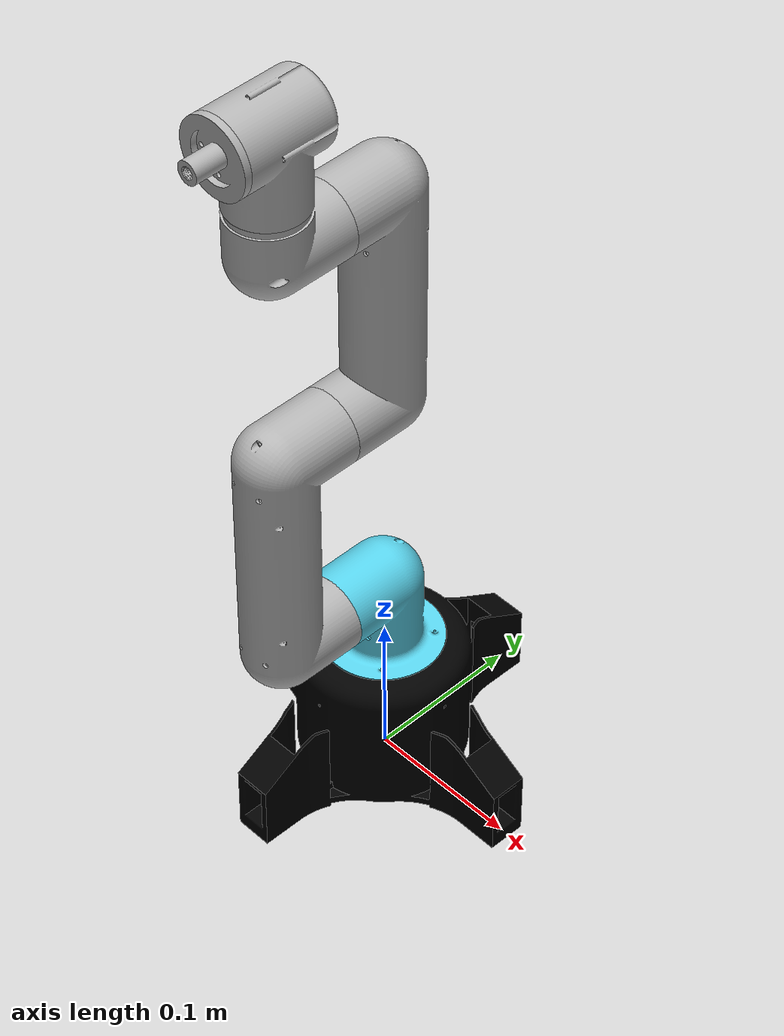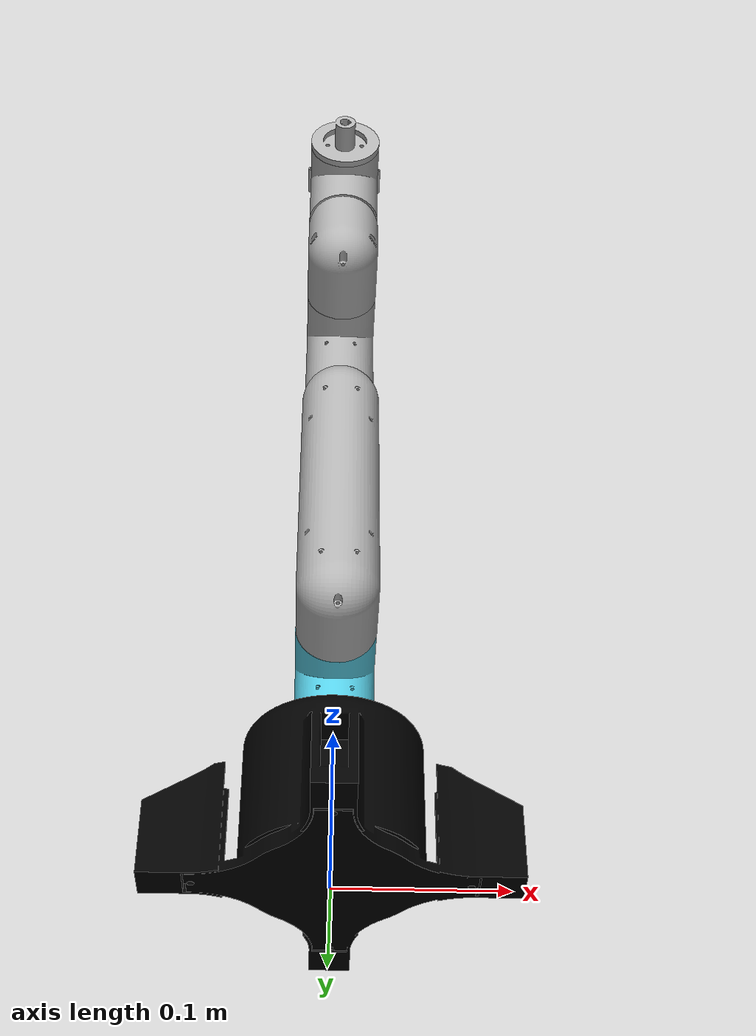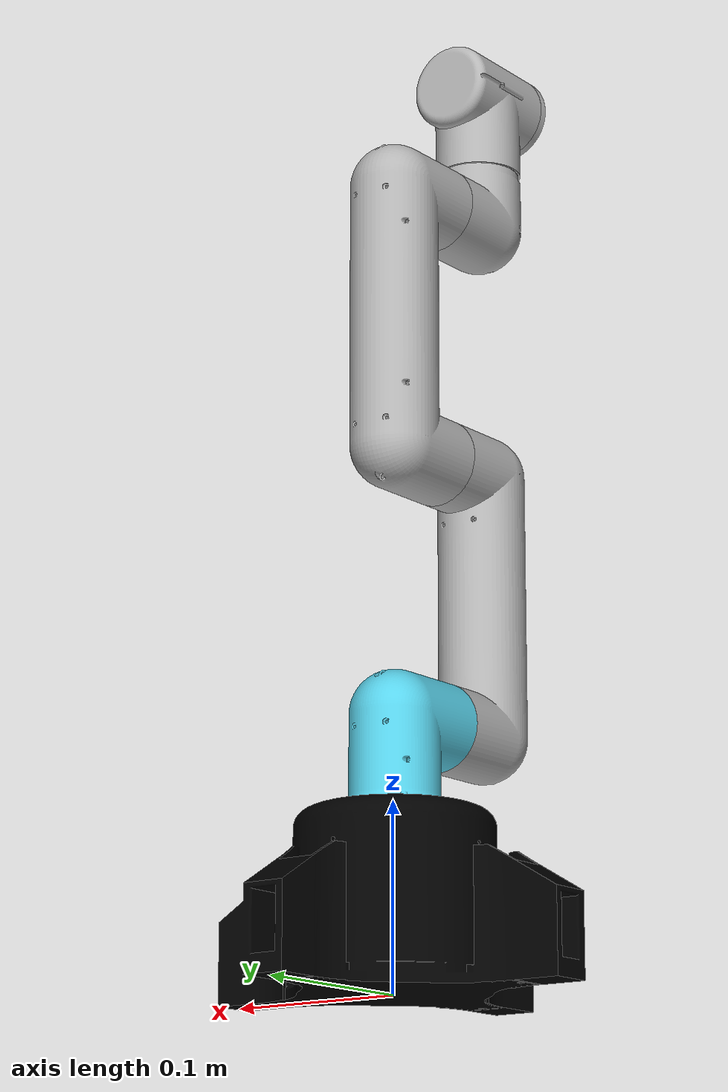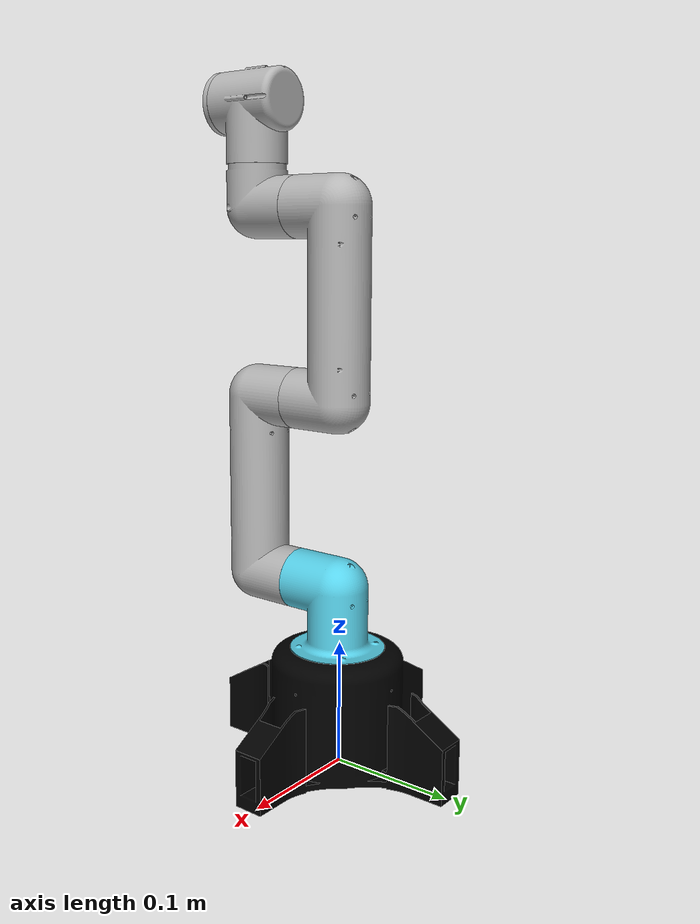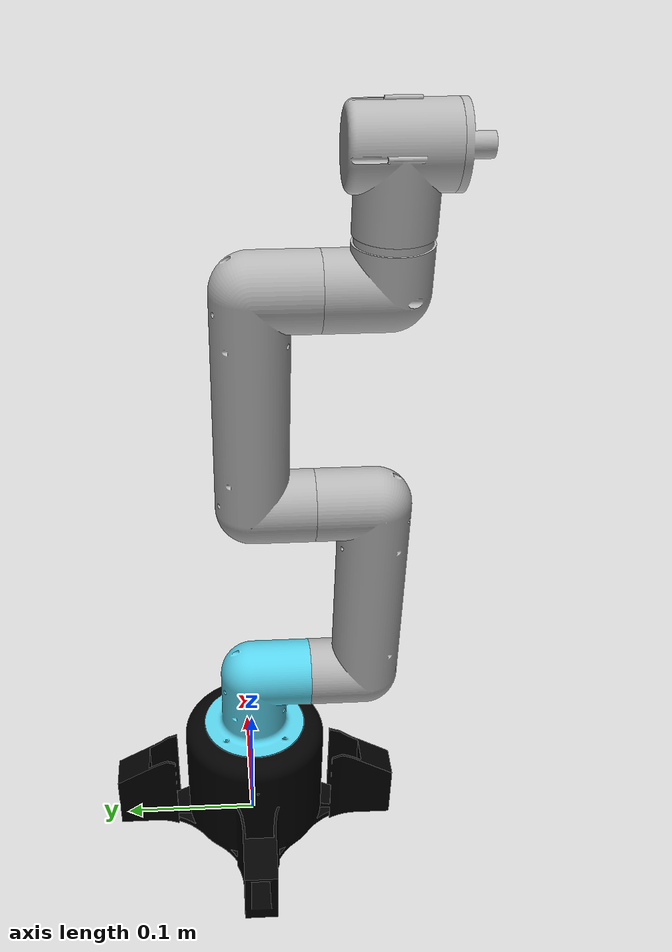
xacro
<?xml version="1.0"?>
<robot xmlns:xacro="http://www.ros.org/wiki/xacro" name="meskobot">
    <xacro:arg name="initial_positions_file" default="initial_positions.yaml" />

    <!-- Import meskobot urdf file -->
    <xacro:include filename="$(find mesko_hardware)/urdf/meskobot.xacro" />

    <!-- Import control_xacro -->
    <xacro:include filename="meskobot.ros2_control.xacro" />

    <xacro:meskobot_ros2_control name="FakeSystem" initial_positions_file="$(arg initial_positions_file)"/>

</robot>

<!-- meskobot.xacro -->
<robot name="meskobot" xmlns:xacro="http://www.ros.org/wiki/xacro">

<xacro:include filename="$(find mesko_hardware)/urdf/materials.xacro" />
<xacro:include filename="$(find mesko_hardware)/urdf/ros2_control.xacro"/>
<link name="world" />
<link name="base_link">
  <inertial>
    <origin xyz="-0.0003745397791516883 -0.0019631062043038395 0.03747857880265421" rpy="0 0 0"/>
    <mass value="3.1845826352803597"/>
    <inertia ixx="0.008692" iyy="0.008661" izz="0.011323" ixy="-1e-06" iyz="1e-06" ixz="-3.5e-05"/>
  </inertial>
  <visual>
    <origin xyz="0 0 0" rpy="0 0 0"/>
    <geometry>
      <mesh filename="file://$(find meskobot_description)/meshes/base_link.stl" scale="0.001 0.001 0.001"/>
    </geometry>
    <material name="black"/>
  </visual>
  <collision>
    <origin xyz="0 0 0" rpy="0 0 0"/>
    <geometry>
      <mesh filename="file://$(find meskobot_description)/meshes/base_link.stl" scale="0.001 0.001 0.001"/>
    </geometry>
  </collision>
</link>

<link name="shoulder_lnk_1">
  <inertial>
    <origin xyz="-0.0034170207463233944 2.7576905876087326e-06 0.02356364231941202" rpy="0 0 0"/>
    <mass value="0.7235284873939697"/>
    <inertia ixx="0.000713" iyy="0.00077" izz="0.000508" ixy="0.0" iyz="-0.0" ixz="9.2e-05"/>
  </inertial>
  <visual>
    <origin xyz="-0.000298 0.00191 -0.084618" rpy="0 0 0"/>
    <geometry>
      <mesh filename="file://$(find meskobot_description)/meshes/shoulder_lnk_1.stl" scale="0.001 0.001 0.001"/>
    </geometry>
    <material name="blue"/>
  </visual>
  <collision>
    <origin xyz="-0.000298 0.00191 -0.084618" rpy="0 0 0"/>
    <geometry>
      <mesh filename="file://$(find meskobot_description)/meshes/shoulder_lnk_1.stl" scale="0.001 0.001 0.001"/>
    </geometry>
  </collision>
</link>

<link name="elbow_link_1">
  <inertial>
    <origin xyz="-0.03458459147388588 -6.447194784561447e-07 0.07711703890846222" rpy="0 0 0"/>
    <mass value="0.7001849598736142"/>
    <inertia ixx="0.00264" iyy="0.002714" izz="0.000421" ixy="0.0" iyz="0.0" ixz="-4.1e-05"/>
  </inertial>
  <visual>
    <origin xyz="0.039916 0.001979 -0.145457" rpy="0 0 0"/>
    <geometry>
      <mesh filename="file://$(find meskobot_description)/meshes/elbow_link_1.stl" scale="0.001 0.001 0.001"/>
    </geometry>
    <material name="silver"/>
  </visual>
  <collision>
    <origin xyz="0.039916 0.001979 -0.145457" rpy="0 0 0"/>
    <geometry>
      <mesh filename="file://$(find meskobot_description)/meshes/elbow_link_1.stl" scale="0.001 0.001 0.001"/>
    </geometry>
  </collision>
</link>

<link name="wrist_link_1">
  <inertial>
    <origin xyz="0.029283863529470048 -4.674670304976973e-07 0.07711846866560701" rpy="0 0 0"/>
    <mass value="0.7001675807512958"/>
    <inertia ixx="0.00264" iyy="0.002714" izz="0.000421" ixy="0.0" iyz="-0.0" ixz="4.1e-05"/>
  </inertial>
  <visual>
    <origin xyz="0.034915 0.00198 -0.292459" rpy="0 0 0"/>
    <geometry>
      <mesh filename="file://$(find meskobot_description)/meshes/wrist_link_1.stl" scale="0.001 0.001 0.001"/>
    </geometry>
    <material name="silver"/>
  </visual>
  <collision>
    <origin xyz="0.034915 0.00198 -0.292459" rpy="0 0 0"/>
    <geometry>
      <mesh filename="file://$(find meskobot_description)/meshes/wrist_link_1.stl" scale="0.001 0.001 0.001"/>
    </geometry>
  </collision>
</link>

<link name="wrist_link_2_1">
  <inertial>
    <origin xyz="-0.0330402578391799 -1.2837655753087165e-05 0.0037027269969738263" rpy="0 0 0"/>
    <mass value="0.2335819823482167"/>
    <inertia ixx="0.000121" iyy="0.000142" izz="0.000134" ixy="0.0" iyz="-0.0" ixz="1e-05"/>
  </inertial>
  <visual>
    <origin xyz="0.03993 0.00205 -0.43946" rpy="0 0 0"/>
    <geometry>
      <mesh filename="file://$(find meskobot_description)/meshes/wrist_link_2_1.stl" scale="0.001 0.001 0.001"/>
    </geometry>
    <material name="silver"/>
  </visual>
  <collision>
    <origin xyz="0.03993 0.00205 -0.43946" rpy="0 0 0"/>
    <geometry>
      <mesh filename="file://$(find meskobot_description)/meshes/wrist_link_2_1.stl" scale="0.001 0.001 0.001"/>
    </geometry>
  </collision>
</link>

<link name="wrist_link_3_1">
  <inertial>
    <origin xyz="0.002968813471448395 -6.430833556184557e-06 0.03825848254656666" rpy="0 0 0"/>
    <mass value="0.27641563652891354"/>
    <inertia ixx="0.000179" iyy="0.000204" izz="0.00016" ixy="0.0" iyz="0.0" ixz="-6e-06"/>
  </inertial>
  <visual>
    <origin xyz="0.08043 0.00205 -0.472486" rpy="0 0 0"/>
    <geometry>
      <mesh filename="file://$(find meskobot_description)/meshes/wrist_link_3_1.stl" scale="0.001 0.001 0.001"/>
    </geometry>
    <material name="silver"/>
  </visual>
  <collision>
    <origin xyz="0.08043 0.00205 -0.472486" rpy="0 0 0"/>
    <geometry>
      <mesh filename="file://$(find meskobot_description)/meshes/wrist_link_3_1.stl" scale="0.001 0.001 0.001"/>
    </geometry>
  </collision>
</link>

<link name="end_eff_v1_1">
  <inertial>
    <origin xyz="-0.0012292962244435934 0.0001913067685121012 -5.677372882928466e-07" rpy="0 0 0"/>
    <mass value="0.08380380597924247"/>
    <inertia ixx="1.7e-05" iyy="1.1e-05" izz="1.1e-05" ixy="-0.0" iyz="0.0" ixz="0.0"/>
  </inertial>
  <visual>
    <origin xyz="0.11043 0.002051 -0.519508" rpy="0 0 0"/>
    <geometry>
      <mesh filename="file://$(find meskobot_description)/meshes/end_eff_v1_1.stl" scale="0.001 0.001 0.001"/>
    </geometry>
    <material name="silver"/>
  </visual>
  <collision>
    <origin xyz="0.11043 0.002051 -0.519508" rpy="0 0 0"/>
    <geometry>
      <mesh filename="file://$(find meskobot_description)/meshes/end_eff_v1_1.stl" scale="0.001 0.001 0.001"/>
    </geometry>
  </collision>
</link>

<joint name="virtual_joint" type="fixed">
  <parent link="world" />
  <child link = "base_link" />
  <origin xyz="0.0 0.0 0.0" rpy="0.0 0.0 0.0" />
</joint>

<joint name="Revolute 28" type="continuous">
  <origin xyz="0.000298 -0.00191 0.084618" rpy="0 0 1.57"/>
  <parent link="base_link"/>
  <child link="shoulder_lnk_1"/>
  <axis xyz="0.0 0.0 1.0"/>
</joint>

<joint name="Revolute 29" type="continuous">
  <origin xyz="-0.040214 -6.9e-05 0.060839" rpy="0 0 0"/>
  <parent link="shoulder_lnk_1"/>
  <child link="elbow_link_1"/>
  <axis xyz="-1.0 -0.0 -0.0"/>
</joint>

<joint name="Revolute 30" type="continuous">
  <origin xyz="0.005001 -1e-06 0.147002" rpy="0 0 0"/>
  <parent link="elbow_link_1"/>
  <child link="wrist_link_1"/>
  <axis xyz="-1.0 0.0 0.0"/>
</joint>

<joint name="Revolute 31" type="continuous">
  <origin xyz="-0.005015 -7e-05 0.147001" rpy="0 0 0"/>
  <parent link="wrist_link_1"/>
  <child link="wrist_link_2_1"/>
  <axis xyz="-1.0 -0.0 -0.0"/>
</joint>

<joint name="Revolute 32" type="continuous">
  <origin xyz="-0.0405 0.0 0.033026" rpy="0 0 0"/>
  <parent link="wrist_link_2_1"/>
  <child link="wrist_link_3_1"/>
  <axis xyz="0.0 4e-06 1.0"/>
</joint>

<joint name="Revolute 33" type="continuous">
  <origin xyz="-0.03 -1e-06 0.047022" rpy="0 0 0"/>
  <parent link="wrist_link_3_1"/>
  <child link="end_eff_v1_1"/>
  <axis xyz="1.0 -0.0 0.0"/>
</joint>

</robot>

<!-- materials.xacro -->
<robot name="meskobot" xmlns:xacro="http://www.ros.org/wiki/xacro" >

<material name="silver">
  <color rgba="0.700 0.700 0.700 1.000"/>
</material>

<material name="black">
  <color rgba="0.00 0.000 0.000 1.000"/>
</material>

<material name="blue">
  <color rgba="0.34 0.815 0.91 1.0"/>
</material>

</robot>
